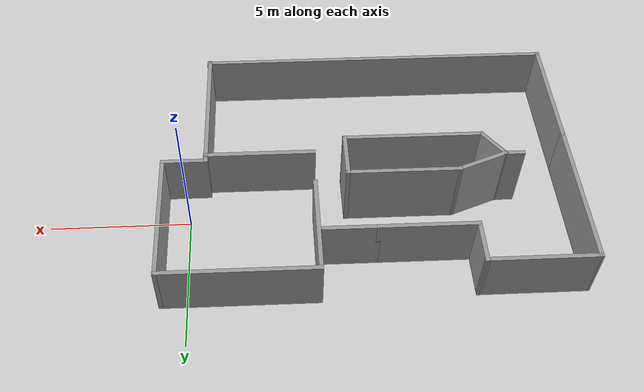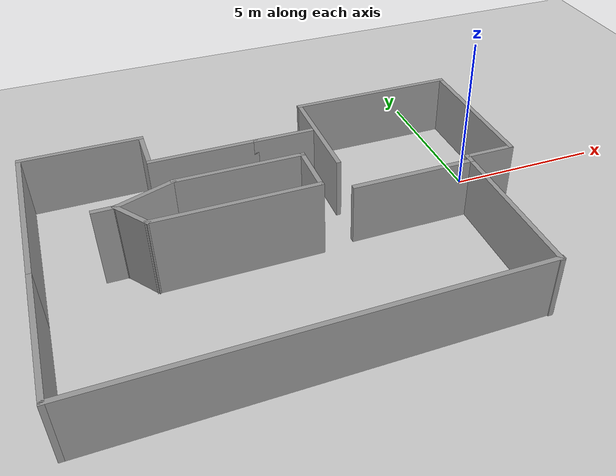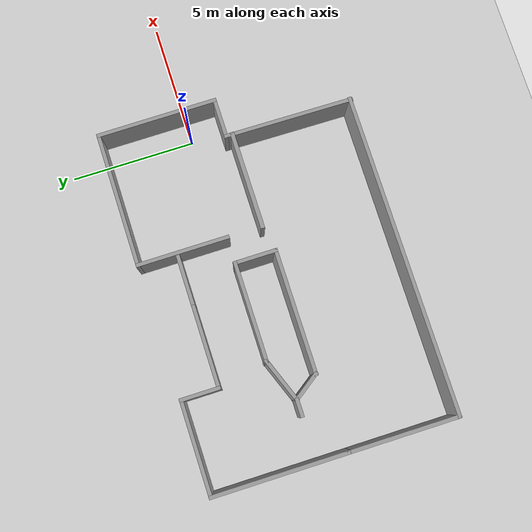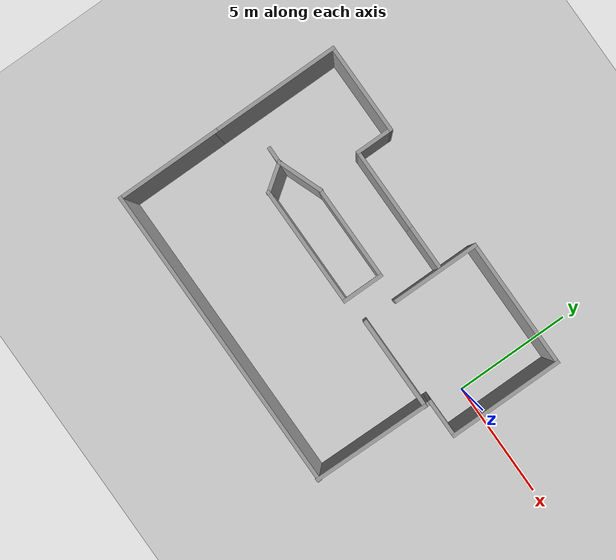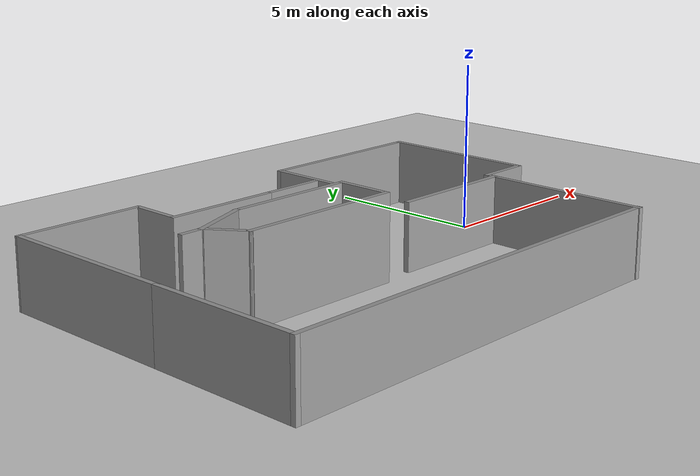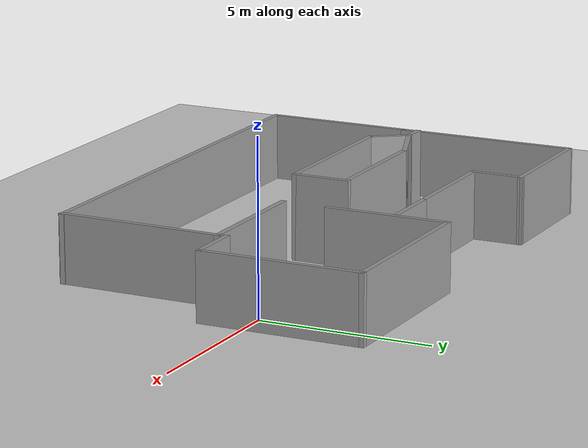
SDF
<sdf version="1.7">
 <world name="default">
  <light name="sun" type="directional">
   <pose>0 0 10 0 -0 0</pose>
   <diffuse>0.8 0.8 0.8 1</diffuse>
   <specular>0.2 0.2 0.2 1</specular>
   <attenuation>
    <range>1000</range>
    <constant>0.9</constant>
    <linear>0.01</linear>
    <quadratic>0.001</quadratic>
   </attenuation>
   <direction>-0.5 0.1 -0.9</direction>
   <spot><inner_angle>0</inner_angle><outer_angle>0</outer_angle><falloff>0</falloff></spot>
  </light>
  <model name="ground_plane">
   <static>1</static>
   <link name="link">
    <collision name="collision">
     <geometry><plane><normal>0 0 1</normal><size>100 100</size></plane></geometry>
     <surface>
      <contact><collide_bitmask>65535</collide_bitmask></contact>
      <friction><ode><mu>100</mu><mu2>50</mu2></ode></friction>
     </surface>
    </collision>
    <visual name="visual">
     <cast_shadows>0</cast_shadows>
     <geometry><plane><normal>0 0 1</normal><size>100 100</size></plane></geometry>
     <material>
      <script><uri>file://media/materials/scripts/gazebo.material</uri><name>Gazebo/Grey</name></script>
     </material>
    </visual>
   </link>
  </model>
  <gravity>0 0 -9.8</gravity>
  <magnetic_field>6e-06 2.3e-05 -4.2e-05</magnetic_field>
  <atmosphere type="adiabatic"/>
  <physics type="ode">
   <max_step_size>0.001</max_step_size>
   <real_time_factor>1</real_time_factor>
   <real_time_update_rate>1000</real_time_update_rate>
  </physics>
  <scene><ambient>0.4 0.4 0.4 1</ambient><background>0.7 0.7 0.7 1</background><shadows>1</shadows></scene>
  <spherical_coordinates>
   <surface_model>EARTH_WGS84</surface_model>
   <latitude_deg>0</latitude_deg>
   <longitude_deg>0</longitude_deg>
   <elevation>0</elevation>
   <heading_deg>0</heading_deg>
  </spherical_coordinates>
  <model name="Basement">
   <pose>-6.32774 -1.47656 0 0 -0 0</pose>
   <link name="Wall_0">
    <collision name="Wall_0_Collision">
     <geometry><box><size>4.876 0.15 2</size></box></geometry>
     <pose>0 0 1 0 -0 0</pose>
    </collision>
    <visual name="Wall_0_Visual">
     <pose>0 0 1 0 -0 0</pose>
     <geometry><box><size>4.876 0.15 2</size></box></geometry>
     <material>
      <script><uri>file://media/materials/scripts/gazebo.material</uri><name>Gazebo/Grey</name></script>
      <ambient>1 1 1 1</ambient>
     </material>
     <meta><layer>0</layer></meta>
    </visual>
    <pose>7.20212 2.54754 0 0 -0 1.5708</pose>
   </link>
   <link name="Wall_10">
    <collision name="Wall_10_Collision">
     <geometry><box><size>4.98852 0.15 2</size></box></geometry>
     <pose>0 0 1 0 -0 0</pose>
    </collision>
    <visual name="Wall_10_Visual">
     <pose>0 0 1 0 -0 0</pose>
     <geometry><box><size>4.98852 0.15 2</size></box></geometry>
     <material>
      <script><uri>file://media/materials/scripts/gazebo.material</uri><name>Gazebo/Grey</name></script>
      <ambient>1 1 1 1</ambient>
     </material>
     <meta><layer>0</layer></meta>
    </visual>
    <pose>5.64804 -2.49054 0 0 -0 -1.58323</pose>
   </link>
   <link name="Wall_11">
    <collision name="Wall_11_Collision">
     <geometry><box><size>13 0.15 2</size></box></geometry>
     <pose>0 0 1 0 -0 0</pose>
    </collision>
    <visual name="Wall_11_Visual">
     <pose>0 0 1 0 -0 0</pose>
     <geometry><box><size>13 0.15 2</size></box></geometry>
     <material>
      <script><uri>file://media/materials/scripts/gazebo.material</uri><name>Gazebo/Grey</name></script>
      <ambient>1 1 1 1</ambient>
     </material>
     <meta><layer>0</layer></meta>
    </visual>
    <pose>-0.776956 -4.87954 0 0 -0 3.14159</pose>
   </link>
   <link name="Wall_12">
    <collision name="Wall_12_Collision">
     <geometry><box><size>4.5 0.15 2</size></box></geometry>
     <pose>0 0 1 0 -0 0</pose>
    </collision>
    <visual name="Wall_12_Visual">
     <pose>0 0 1 0 -0 0</pose>
     <geometry><box><size>4.5 0.15 2</size></box></geometry>
     <material>
      <script><uri>file://media/materials/scripts/gazebo.material</uri><name>Gazebo/Grey</name></script>
      <ambient>1 1 1 1</ambient>
     </material>
     <meta><layer>0</layer></meta>
    </visual>
    <pose>-7.20196 -2.70454 0 0 -0 1.5708</pose>
   </link>
   <link name="Wall_15">
    <collision name="Wall_15_Collision">
     <geometry><box><size>5.5 0.15 2</size></box></geometry>
     <pose>0 0 1 0 -0 0</pose>
    </collision>
    <visual name="Wall_15_Visual">
     <pose>0 0 1 0 -0 0</pose>
     <geometry><box><size>5.5 0.15 2</size></box></geometry>
     <material>
      <script><uri>file://media/materials/scripts/gazebo.material</uri><name>Gazebo/Grey</name></script>
      <ambient>1 1 1 1</ambient>
     </material>
     <meta><layer>0</layer></meta>
    </visual>
    <pose>-7.20196 2.14546 0 0 -0 1.5708</pose>
   </link>
   <link name="Wall_16">
    <collision name="Wall_16_Collision">
     <geometry><box><size>3.86008 0.15 2</size></box></geometry>
     <pose>0 0 1 0 -0 0</pose>
    </collision>
    <visual name="Wall_16_Visual">
     <pose>0 0 1 0 -0 0</pose>
     <geometry><box><size>3.86008 0.15 2</size></box></geometry>
     <material>
      <script><uri>file://media/materials/scripts/gazebo.material</uri><name>Gazebo/Grey</name></script>
      <ambient>1 1 1 1</ambient>
     </material>
     <meta><layer>0</layer></meta>
    </visual>
    <pose>-5.34692 4.8245 0 0 -0 0.002176</pose>
   </link>
   <link name="Wall_17">
    <collision name="Wall_17_Collision">
     <geometry><box><size>1.626 0.15 2</size></box></geometry>
     <pose>0 0 1 0 -0 0</pose>
    </collision>
    <visual name="Wall_17_Visual">
     <pose>0 0 1 0 -0 0</pose>
     <geometry><box><size>1.626 0.15 2</size></box></geometry>
     <material>
      <script><uri>file://media/materials/scripts/gazebo.material</uri><name>Gazebo/Grey</name></script>
      <ambient>1 1 1 1</ambient>
     </material>
     <meta><layer>0</layer></meta>
    </visual>
    <pose>-3.49188 4.09054 0 0 -0 -1.5708</pose>
   </link>
   <link name="Wall_21">
    <collision name="Wall_21_Collision">
     <geometry><box><size>3.5 0.15 2</size></box></geometry>
     <pose>0 0 1 0 -0 0</pose>
    </collision>
    <visual name="Wall_21_Visual">
     <pose>0 0 1 0 -0 0</pose>
     <geometry><box><size>3.5 0.15 2</size></box></geometry>
     <material>
      <script><uri>file://media/materials/scripts/gazebo.material</uri><name>Gazebo/Grey</name></script>
      <ambient>1 1 1 1</ambient>
     </material>
     <meta><layer>0</layer></meta>
    </visual>
    <pose>-1.81688 3.35254 0 0 -0 0</pose>
   </link>
   <link name="Wall_28">
    <collision name="Wall_28_Collision">
     <geometry><box><size>3.734 0.15 2</size></box></geometry>
     <pose>0 0 1 0 -0 0</pose>
    </collision>
    <visual name="Wall_28_Visual">
     <pose>0 0 1 0 -0 0</pose>
     <geometry><box><size>3.734 0.15 2</size></box></geometry>
     <material>
      <script><uri>file://media/materials/scripts/gazebo.material</uri><name>Gazebo/Grey</name></script>
      <ambient>1 1 1 1</ambient>
     </material>
     <meta><layer>0</layer></meta>
    </visual>
    <pose>1.86612 3.11854 0 0 -0 -1.5708</pose>
   </link>
   <link name="Wall_30">
    <collision name="Wall_30_Collision">
     <geometry><box><size>2 0.15 2</size></box></geometry>
     <pose>0 0 1 0 -0 0</pose>
    </collision>
    <visual name="Wall_30_Visual">
     <pose>0 0 1 0 -0 0</pose>
     <geometry><box><size>2 0.15 2</size></box></geometry>
     <material>
      <script><uri>file://media/materials/scripts/gazebo.material</uri><name>Gazebo/Grey</name></script>
      <ambient>1 1 1 1</ambient>
     </material>
     <meta><layer>0</layer></meta>
    </visual>
    <pose>0.783119 3.35254 0 0 -0 0</pose>
   </link>
   <link name="Wall_32">
    <collision name="Wall_32_Collision">
     <geometry><box><size>1.75 0.15 2.5</size></box></geometry>
     <pose>0 0 1.25 0 -0 0</pose>
    </collision>
    <visual name="Wall_32_Visual">
     <pose>0 0 1.25 0 -0 0</pose>
     <geometry><box><size>1.75 0.15 2.5</size></box></geometry>
     <material>
      <script><uri>file://media/materials/scripts/gazebo.material</uri><name>Gazebo/Grey</name></script>
      <ambient>1 1 1 1</ambient>
     </material>
     <meta><layer>0</layer></meta>
    </visual>
    <pose>0.752479 0.564965 0 0 -0 -1.5708</pose>
   </link>
   <link name="Wall_33">
    <collision name="Wall_33_Collision">
     <geometry><box><size>5 0.15 2.5</size></box></geometry>
     <pose>0 0 1.25 0 -0 0</pose>
    </collision>
    <visual name="Wall_33_Visual">
     <pose>0 0 1.25 0 -0 0</pose>
     <geometry><box><size>5 0.15 2.5</size></box></geometry>
     <material>
      <script><uri>file://media/materials/scripts/gazebo.material</uri><name>Gazebo/Grey</name></script>
      <ambient>1 1 1 1</ambient>
     </material>
     <meta><layer>0</layer></meta>
    </visual>
    <pose>-1.67252 -0.235035 0 0 -0 3.14159</pose>
   </link>
   <link name="Wall_34">
    <collision name="Wall_34_Collision">
     <geometry><box><size>1.33104 0.15 2.5</size></box></geometry>
     <pose>0 0 1.25 0 -0 0</pose>
    </collision>
    <visual name="Wall_34_Visual">
     <pose>0 0 1.25 0 -0 0</pose>
     <geometry><box><size>1.33104 0.15 2.5</size></box></geometry>
     <material>
      <script><uri>file://media/materials/scripts/gazebo.material</uri><name>Gazebo/Grey</name></script>
      <ambient>1 1 1 1</ambient>
     </material>
     <meta><layer>0</layer></meta>
    </visual>
    <pose>-4.44087 0.245406 0 0 -0 2.19129</pose>
   </link>
   <link name="Wall_35">
    <collision name="Wall_35_Collision">
     <geometry><box><size>0.75 0.15 2.5</size></box></geometry>
     <pose>0 0 1.25 0 -0 0</pose>
    </collision>
    <visual name="Wall_35_Visual">
     <pose>0 0 1.25 0 -0 0</pose>
     <geometry><box><size>0.75 0.15 2.5</size></box></geometry>
     <material>
      <script><uri>file://media/materials/scripts/gazebo.material</uri><name>Gazebo/Grey</name></script>
      <ambient>1 1 1 1</ambient>
     </material>
     <meta><layer>0</layer></meta>
    </visual>
    <pose>-5.08422 0.725847 0 0 -0 3.14159</pose>
   </link>
   <link name="Wall_37">
    <collision name="Wall_37_Collision">
     <geometry><box><size>1.95373 0.15 2.5</size></box></geometry>
     <pose>0 0 1.25 0 -0 0</pose>
    </collision>
    <visual name="Wall_37_Visual">
     <pose>0 0 1.25 0 -0 0</pose>
     <geometry><box><size>1.95373 0.15 2.5</size></box></geometry>
     <material>
      <script><uri>file://media/materials/scripts/gazebo.material</uri><name>Gazebo/Grey</name></script>
      <ambient>1 1 1 1</ambient>
     </material>
     <meta><layer>0</layer></meta>
    </visual>
    <pose>-3.94087 1.04541 0 0 -0 0.362199</pose>
   </link>
   <link name="Wall_38">
    <collision name="Wall_38_Collision">
     <geometry><box><size>4 0.15 2.5</size></box></geometry>
     <pose>0 0 1.25 0 -0 0</pose>
    </collision>
    <visual name="Wall_38_Visual">
     <pose>0 0 1.25 0 -0 0</pose>
     <geometry><box><size>4 0.15 2.5</size></box></geometry>
     <material>
      <script><uri>file://media/materials/scripts/gazebo.material</uri><name>Gazebo/Grey</name></script>
      <ambient>1 1 1 1</ambient>
     </material>
     <meta><layer>0</layer></meta>
    </visual>
    <pose>-1.17252 1.36496 0 0 -0 0</pose>
   </link>
   <link name="Wall_4">
    <collision name="Wall_4_Collision">
     <geometry><box><size>5.486 0.15 2</size></box></geometry>
     <pose>0 0 1 0 -0 0</pose>
    </collision>
    <visual name="Wall_4_Visual">
     <pose>0 0 1 0 -0 0</pose>
     <geometry><box><size>5.486 0.15 2</size></box></geometry>
     <material>
      <script><uri>file://media/materials/scripts/gazebo.material</uri><name>Gazebo/Grey</name></script>
      <ambient>1 1 1 1</ambient>
     </material>
     <meta><layer>0</layer></meta>
    </visual>
    <pose>4.53412 4.91054 0 0 -0 3.14159</pose>
   </link>
   <link name="Wall_6">
    <collision name="Wall_6_Collision">
     <geometry><box><size>1.674 0.15 2</size></box></geometry>
     <pose>0 0 1 0 -0 0</pose>
    </collision>
    <visual name="Wall_6_Visual">
     <pose>0 0 1 0 -0 0</pose>
     <geometry><box><size>1.674 0.15 2</size></box></geometry>
     <material>
      <script><uri>file://media/materials/scripts/gazebo.material</uri><name>Gazebo/Grey</name></script>
      <ambient>1 1 1 1</ambient>
     </material>
     <meta><layer>0</layer></meta>
    </visual>
    <pose>6.44012 0.184538 0 0 -0 3.14159</pose>
   </link>
   <link name="Wall_7">
    <collision name="Wall_7_Collision">
     <geometry><box><size>0.406 0.15 2</size></box></geometry>
     <pose>0 0 1 0 -0 0</pose>
    </collision>
    <visual name="Wall_7_Visual">
     <pose>0 0 1 0 -0 0</pose>
     <geometry><box><size>0.406 0.15 2</size></box></geometry>
     <material>
      <script><uri>file://media/materials/scripts/gazebo.material</uri><name>Gazebo/Grey</name></script>
      <ambient>1 1 1 1</ambient>
     </material>
     <meta><layer>0</layer></meta>
    </visual>
    <pose>5.67812 0.056538 0 0 -0 -1.5708</pose>
   </link>
   <link name="Wall_8">
    <collision name="Wall_8_Collision">
     <geometry><box><size>3.982 0.17 2</size></box></geometry>
     <pose>0 0 1 0 -0 0</pose>
    </collision>
    <visual name="Wall_8_Visual">
     <pose>0 0 1 0 -0 0</pose>
     <geometry><box><size>3.982 0.17 2</size></box></geometry>
     <material>
      <script><uri>file://media/materials/scripts/gazebo.material</uri><name>Gazebo/Grey</name></script>
      <ambient>1 1 1 1</ambient>
     </material>
     <meta><layer>0</layer></meta>
    </visual>
    <pose>3.77212 -0.071462 0 0 -0 3.14159</pose>
   </link>
   <static>1</static>
  </model>
 </world>
</sdf>
